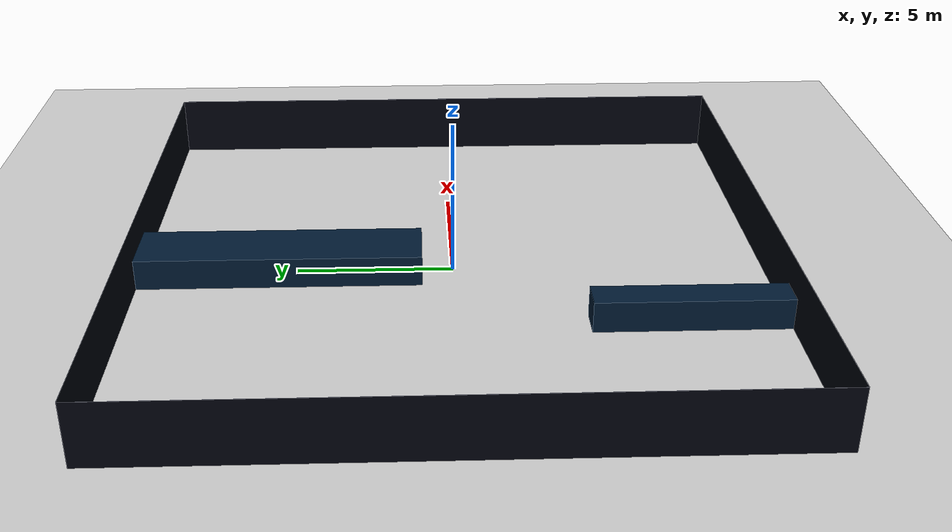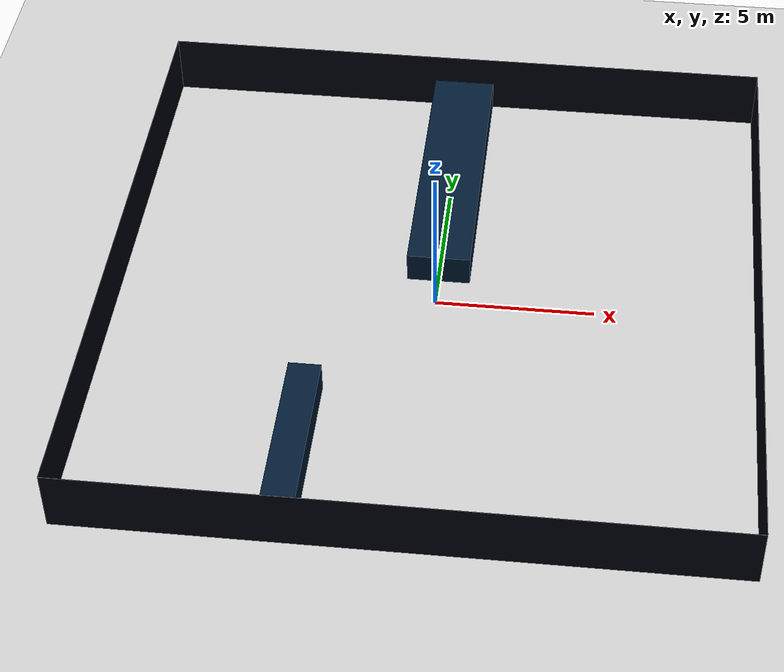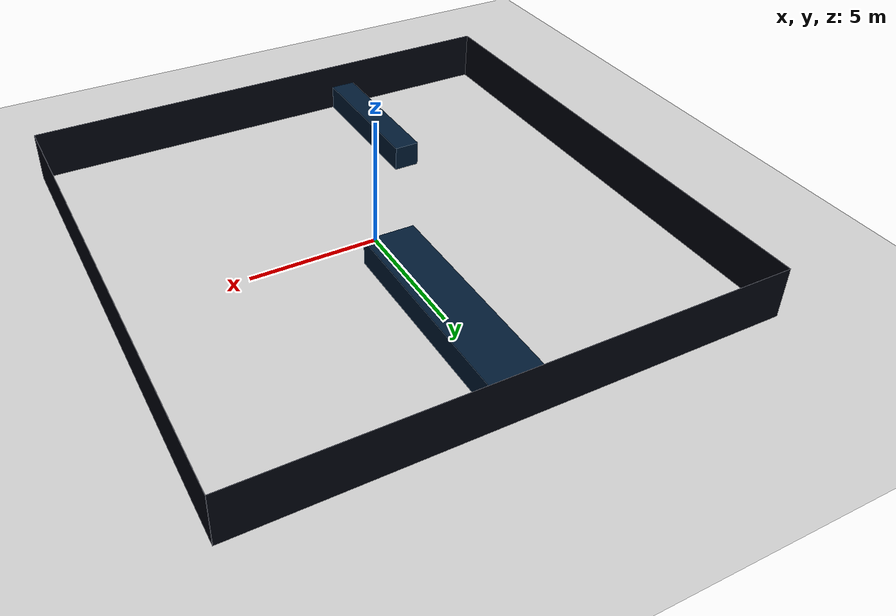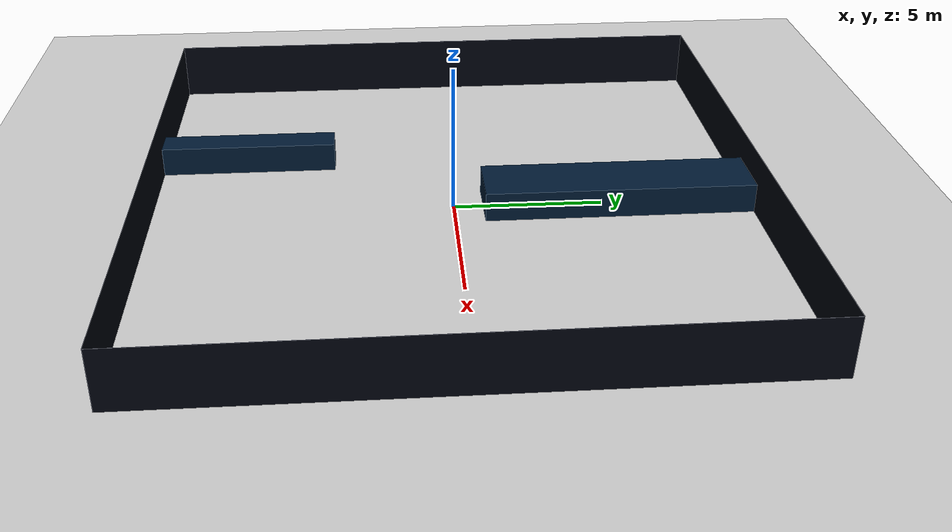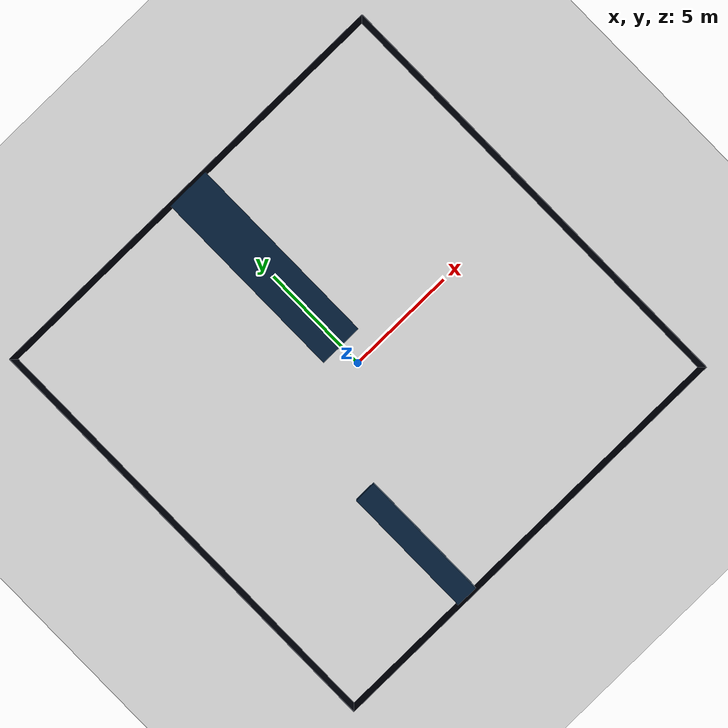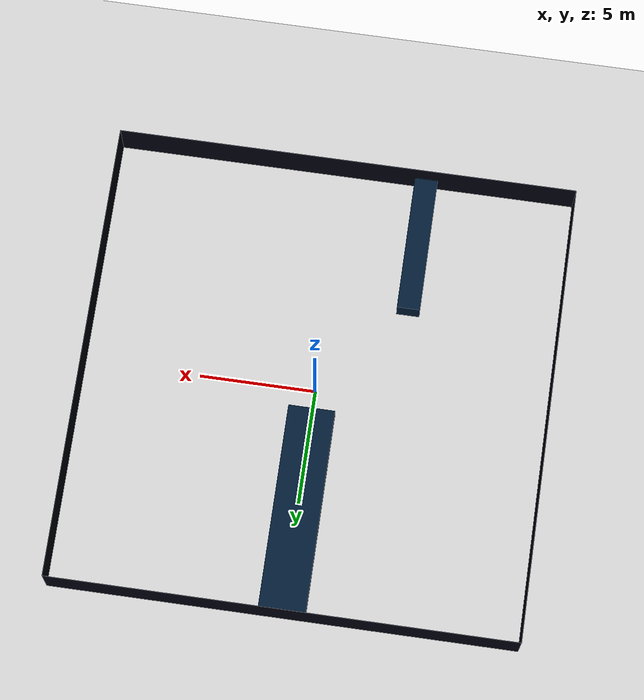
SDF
<?xml version="1.0"?>
<sdf version='1.8'>
    <world name='maze'>
        <physics name='1ms' type='ignored'>
            <max_step_size>0.003</max_step_size>
            <real_time_factor>1</real_time_factor>
            <real_time_update_rate>1000</real_time_update_rate>
        </physics>
        <plugin name='ignition::gazebo::systems::Physics' filename='ignition-gazebo-physics-system' />
        <plugin name='ignition::gazebo::systems::UserCommands' filename='ignition-gazebo-user-commands-system' />
        <plugin name='ignition::gazebo::systems::SceneBroadcaster' filename='ignition-gazebo-scene-broadcaster-system' />
        <plugin name='ignition::gazebo::systems::Contact' filename='ignition-gazebo-contact-system' />
        <light name='sun' type='directional'>
            <cast_shadows>1</cast_shadows>
            <pose>0 0 10 0 -0 0</pose>
            <diffuse>0.8 0.8 0.8 1</diffuse>
            <specular>0.2 0.2 0.2 1</specular>
            <attenuation>
                <range>1000</range>
                <constant>0.90000000000000002</constant>
                <linear>0.01</linear>
                <quadratic>0.001</quadratic>
            </attenuation>
            <direction>-0.5 0.1 -0.9</direction>
            <spot>
                <inner_angle>0</inner_angle>
                <outer_angle>0</outer_angle>
                <falloff>0</falloff>
            </spot>
        </light>
        <gravity>0 0 -9.8</gravity>
        <magnetic_field>6e-06 2.3e-05 -4.2e-05</magnetic_field>
        <atmosphere type='adiabatic' />
        <scene>
            <ambient>0.4 0.4 0.4 1</ambient>
            <background>0.7 0.7 0.7 1</background>
            <shadows>1</shadows>
        </scene>
        <model name='ground_plane'>
            <static>1</static>
            <link name='link'>
                <collision name='collision'>
                    <geometry>
                        <plane>
                            <normal>0 0 1</normal>
                            <size>100 100</size>
                        </plane>
                    </geometry>
                    <surface>
                        <friction>
                            <ode />
                        </friction>
                        <bounce />
                        <contact />
                    </surface>
                </collision>
                <visual name='visual'>
                    <geometry>
                        <plane>
                            <normal>0 0 1</normal>
                            <size>100 100</size>
                        </plane>
                    </geometry>
                    <material>
                        <ambient>0.8 0.8 0.8 1</ambient>
                        <diffuse>0.8 0.8 0.8 1</diffuse>
                        <specular>0.8 0.8 0.8 1</specular>
                    </material>
                    <plugin name='__default__' filename='__default__' />
                </visual>
            </link>
            <plugin name='__default__' filename='__default__' />
            <pose>0 0 0 0 -0 0</pose>
        </model>

        <model name='border'>
            <pose>0 0 1 0 0 0</pose>
            <static>true</static>
            <link name='wall1'>
                <pose>-10.005 0 0 0 0 0</pose>
                <static>true</static>
                <collision name='wall1_collision'>
                    <geometry>
                        <box>
                            <size>0.01 20 2</size>
                        </box>
                    </geometry>
                </collision>
                <visual name='wall1_visual'>
                    <geometry>
                        <box>
                            <size>0.01 20 2</size>
                        </box>
                    </geometry>
                    <material>
                        <ambient>0.1 0.1 0.1 1</ambient>
                        <diffuse>0 0.01 0.05 1</diffuse>
                        <specular>0 0.01 0.05 1</specular>
                    </material>
                </visual>
            </link>
            <link name='wall2'>
                <pose>10.005 0 0 0 0 0</pose>
                <static>true</static>
                <collision name='wall2_collision'>
                    <geometry>
                        <box>
                            <size>0.01 20 2</size>
                        </box>
                    </geometry>
                </collision>
                <visual name='wall2_visual'>
                    <geometry>
                        <box>
                            <size>0.01 20 2</size>
                        </box>
                    </geometry>
                    <material>
                        <ambient>0.1 0.1 0.1 1</ambient>
                        <diffuse>0 0.01 0.05 1</diffuse>
                        <specular>0 0.01 0.05 1</specular>
                    </material>
                </visual>
            </link>
            <link name='wall3'>
                <pose>0 10.005 0 0 0 0</pose>
                <static>true</static>
                <collision name='wall3_collision'>
                    <geometry>
                        <box>
                            <size>20 0.01 2</size>
                        </box>
                    </geometry>
                </collision>
                <visual name='wall3_visual'>
                    <geometry>
                        <box>
                            <size>20 0.01 2</size>
                        </box>
                    </geometry>
                    <material>
                        <ambient>0.1 0.1 0.1 1</ambient>
                        <diffuse>0 0.01 0.05 1</diffuse>
                        <specular>0 0.01 0.05 1</specular>
                    </material>
                </visual>
            </link>
            <link name='wall4'>
                <pose>0 -10.005 0 0 0 0</pose>
                <static>true</static>
                <collision name='wall4_collision'>
                    <geometry>
                        <box>
                            <size>20 0.01 2</size>
                        </box>
                    </geometry>
                    <material>
                        <ambient>0.1 0.1 0.1 1</ambient>
                        <diffuse>0 0.01 0.05 1</diffuse>
                        <specular>0 0.01 0.05 1</specular>
                    </material>
                </collision>
                <visual name='wall4_visual'>
                    <geometry>
                        <box>
                            <size>20 0.01 2</size>
                        </box>
                    </geometry>
                    <material>
                        <ambient>0.1 0.1 0.1 1</ambient>
                        <diffuse>0 0.01 0.05 1</diffuse>
                        <specular>0 0.01 0.05 1</specular>
                    </material>
                </visual>
            </link>
        </model>

        <model name='obstacles'>
            <pose>0 0 0.5 0 0 0</pose>
            <static>true</static>
            <link name='wall3'>
                <pose>-3.5 -7 0 0 0 0</pose>
                <static>true</static>
                <collision name='wall3_collision'>
                    <geometry>
                        <box>
                            <size>1 6 1</size>
                        </box>
                    </geometry>
                </collision>
                <visual name='wall3_visual'>
                    <geometry>
                        <box>
                            <size>1 6 1</size>
                        </box>
                    </geometry>
                    <material>
                        <ambient>0.1 0.1 0.1 1</ambient>
                        <diffuse>0 0.1 0.2 1</diffuse>
                        <specular>0 0.01 0.05 1</specular>
                    </material>
                </visual>
            </link>
            <link name='wall12'>
                <pose>0 5.5 0 0 0 0</pose>
                <static>true</static>
                <collision name='wall12_collision'>
                    <geometry>
                        <box>
                            <size>2 9 1</size>
                        </box>
                    </geometry>
                </collision>
                <visual name='wall12_visual'>
                    <geometry>
                        <box>
                            <size>2 9 1</size>
                        </box>
                    </geometry>
                    <material>
                        <ambient>0.1 0.1 0.1 1</ambient>
                        <diffuse>0 0.1 0.2 1</diffuse>
                        <specular>0 0.01 0.05 1</specular>
                    </material>
                </visual>
            </link>
        </model>
    </world>
</sdf>
